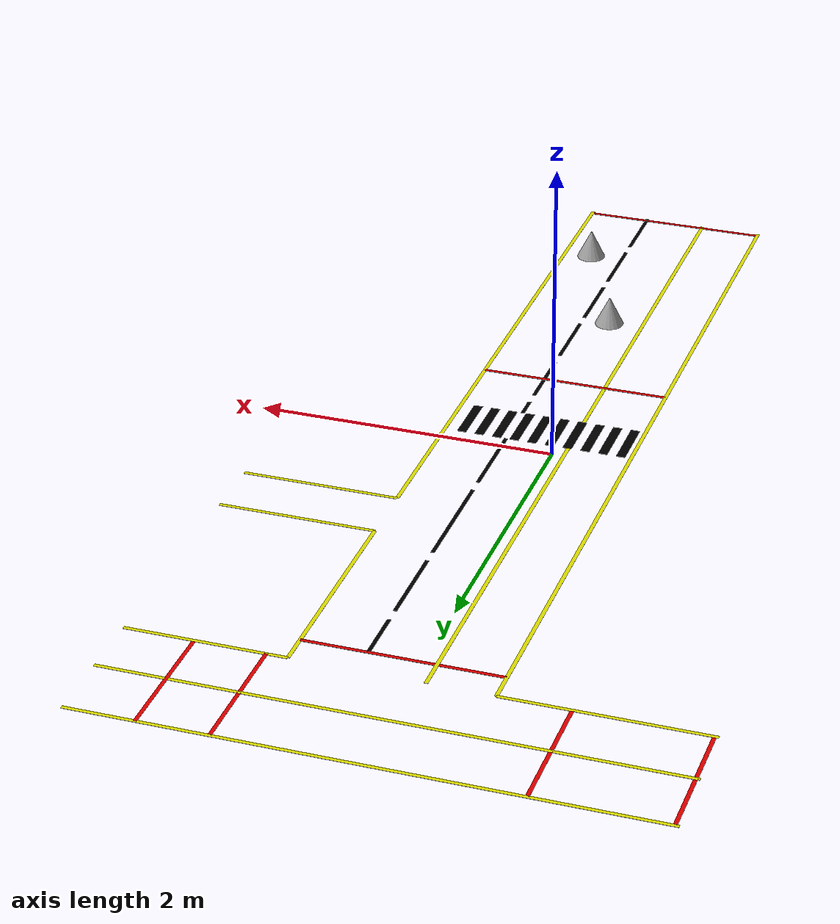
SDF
<?xml version="1.0" ?>
<sdf version="1.8">
  <world name="agv_road_colored_world">
    <physics name="1ms" type="ignored">
      <max_step_size>0.001</max_step_size>
      <real_time_factor>1.0</real_time_factor>
    </physics>
    <plugin filename="gz-sim-physics-system" name="gz::sim::systems::Physics"/>
    <plugin filename="gz-sim-user-commands-system" name="gz::sim::systems::UserCommands"/>
    <plugin filename="gz-sim-scene-broadcaster-system" name="gz::sim::systems::SceneBroadcaster"/>
    <plugin filename="gz-sim-sensors-system" name="gz::sim::systems::Sensors">
      <render_engine>ogre2</render_engine>
    </plugin>
    <light type="directional" name="sun_light">
      <cast_shadows>false</cast_shadows>
      <pose>0 0 10 0 0 0</pose>
      <diffuse>0.8 0.8 0.8 1</diffuse>
      <specular>0.2 0.2 0.2 1</specular>
      <attenuation>
        <range>1000</range>
        <constant>0.9</constant>
        <linear>0.01</linear>
        <quadratic>0.001</quadratic>
      </attenuation>
      <direction>-0.5 0.1 -0.9</direction>
    </light>

    <model name="invisible_ground">
      <static>true</static>
      <link name="link">
        <collision name="collision">
          <geometry>
            <plane>
              <normal>0 0 1</normal>
              <size>20 20</size>
            </plane>
          </geometry>
          <surface>
            <friction>
              <ode>
                <mu>1.0</mu>
                <mu2>1.0</mu2>
              </ode>
            </friction>
          </surface>
        </collision>
      </link>
    </model>

    <model name="road_lines">
      <static>true</static>

      <link name="yellow_h_lines">
        <visual name="y_h1">
          <pose>0 3.6325 0.001 0 0 0</pose>
          <geometry><box><size>3.6 0.025 0.001</size></box></geometry>
          <material><ambient>1 1 0 1</ambient><diffuse>1 1 0 1</diffuse></material>
        </visual>
        <visual name="y_h2">
          <pose>0 3.1825 0.001 0 0 0</pose>
          <geometry><box><size>3.6 0.025 0.001</size></box></geometry>
          <material><ambient>1 1 0 1</ambient><diffuse>1 1 0 1</diffuse></material>
        </visual>
        <visual name="y_h3_left">
          <pose>-1.15 2.7625 0.001 0 0 0</pose>
          <geometry><box><size>1.3 0.025 0.001</size></box></geometry>
          <material><ambient>1 1 0 1</ambient><diffuse>1 1 0 1</diffuse></material>
        </visual>
        <visual name="y_h3_right">
          <pose>1.283 2.7625 0.001 0 0 0</pose>
          <geometry><box><size>1.034 0.025 0.001</size></box></geometry>
          <material><ambient>1 1 0 1</ambient><diffuse>1 1 0 1</diffuse></material>
        </visual>
      </link>

      <link name="yellow_v_lines">
        <visual name="y_v_border_left">
          <pose>-0.5 -0.435 0.001 0 0 0</pose>
          <geometry><box><size>0.025 6.395 0.001</size></box></geometry>
          <material><ambient>1 1 0 1</ambient><diffuse>1 1 0 1</diffuse></material>
        </visual>
        <visual name="y_v_lane1_top">
          <pose>-0.078 1.3275 0.001 0 0 0</pose>
          <geometry><box><size>0.025 2.87 0.001</size></box></geometry>
          <material><ambient>1 1 0 1</ambient><diffuse>1 1 0 1</diffuse></material>
        </visual>
        <visual name="y_v_lane1_bot">
          <pose>-0.078 -2.0525 0.001 0 0 0</pose>
          <geometry><box><size>0.025 3.16 0.001</size></box></geometry>
          <material><ambient>1 1 0 1</ambient><diffuse>1 1 0 1</diffuse></material>
        </visual>
        <visual name="y_v_lane2_top_1">
          <pose>0.344 0.1925 0.001 0 0 0</pose>
          <geometry><box><size>0.025 0.6 0.001</size></box></geometry>
          <material><ambient>0 0 0 1</ambient><diffuse>0 0 0 1</diffuse></material>
        </visual>
        <visual name="y_v_lane2_top_2">
          <pose>0.344 0.9925 0.001 0 0 0</pose>
          <geometry><box><size>0.025 0.8 0.001</size></box></geometry>
          <material><ambient>0 0 0 1</ambient><diffuse>0 0 0 1</diffuse></material>
        </visual>
        <visual name="y_v_lane2_top_3">
          <pose>0.344 1.7925 0.001 0 0 0</pose>
          <geometry><box><size>0.025 0.6 0.001</size></box></geometry>
          <material><ambient>0 0 0 1</ambient><diffuse>0 0 0 1</diffuse></material>
        </visual>
        <visual name="y_v_lane2_top_4">
          <pose>0.344 2.3775 0.001 0 0 0</pose>
          <geometry><box><size>0.025 0.37 0.001</size></box></geometry>
          <material><ambient>0 0 0 1</ambient><diffuse>0 0 0 1</diffuse></material>
        </visual>
        <visual name="y_v_lane2_bot_1">
          <pose>0.344 -3.3825 0.001 0 0 0</pose>
          <geometry><box><size>0.025 0.5 0.001</size></box></geometry>
          <material><ambient>0 0 0 1</ambient><diffuse>0 0 0 1</diffuse></material>
        </visual>
        <visual name="y_v_lane2_bot_2">
          <pose>0.344 -2.7825 0.001 0 0 0</pose>
          <geometry><box><size>0.025 0.5 0.001</size></box></geometry>
          <material><ambient>0 0 0 1</ambient><diffuse>0 0 0 1</diffuse></material>
        </visual>
        <visual name="y_v_lane2_bot_3">
          <pose>0.344 -2.1825 0.001 0 0 0</pose>
          <geometry><box><size>0.025 0.5 0.001</size></box></geometry>
          <material><ambient>0 0 0 1</ambient><diffuse>0 0 0 1</diffuse></material>
        </visual>
        <visual name="y_v_lane2_bot_4">
          <pose>0.344 -1.5825 0.001 0 0 0</pose>
          <geometry><box><size>0.025 0.5 0.001</size></box></geometry>
          <material><ambient>0 0 0 1</ambient><diffuse>0 0 0 1</diffuse></material>
        </visual>
        <visual name="y_v_lane2_bot_5">
          <pose>0.344 -0.9825 0.001 0 0 0</pose>
          <geometry><box><size>0.025 0.5 0.001</size></box></geometry>
          <material><ambient>0 0 0 1</ambient><diffuse>0 0 0 1</diffuse></material>
        </visual>
        <visual name="y_v_lane2_bot_6">
          <pose>0.344 -0.5525 0.001 0 0 0</pose>
          <geometry><box><size>0.025 0.16 0.001</size></box></geometry>
          <material><ambient>0 0 0 1</ambient><diffuse>0 0 0 1</diffuse></material>
        </visual>
        <visual name="y_v_border_right_top">
          <pose>0.766 2.0125 0.001 0 0 0</pose>
          <geometry><box><size>0.025 1.50 0.001</size></box></geometry>
          <material><ambient>1 1 0 1</ambient><diffuse>1 1 0 1</diffuse></material>
        </visual>
        <visual name="y_v_border_right_bot">
          <pose>0.766 -1.396 0.001 0 0 0</pose>
          <geometry><box><size>0.025 4.473 0.001</size></box></geometry>
          <material><ambient>1 1 0 1</ambient><diffuse>1 1 0 1</diffuse></material>
        </visual>
      </link>

      <link name="yellow_branch_lines">
        <visual name="y_branch_top">
          <pose>1.283 1.2625 0.001 0 0 0</pose>
          <geometry><box><size>1.034 0.025 0.001</size></box></geometry>
          <material><ambient>1 1 0 1</ambient><diffuse>1 1 0 1</diffuse></material>
        </visual>
        <visual name="y_branch_bot">
          <pose>1.283 0.8405 0.001 0 0 0</pose>
          <geometry><box><size>1.034 0.025 0.001</size></box></geometry>
          <material><ambient>1 1 0 1</ambient><diffuse>1 1 0 1</diffuse></material>
        </visual>
      </link>

      <link name="red_lines">
        <visual name="r_v1"><pose>-1.775 3.1975 0.001 0 0 0</pose><geometry><box><size>0.025 0.87 0.001</size></box></geometry><material><ambient>1 0 0 1</ambient><diffuse>1 0 0 1</diffuse></material></visual>
        <visual name="r_v2"><pose>-0.95 3.1975 0.001 0 0 0</pose><geometry><box><size>0.025 0.87 0.001</size></box></geometry><material><ambient>1 0 0 1</ambient><diffuse>1 0 0 1</diffuse></material></visual>
        <visual name="r_v3"><pose>0.90 3.1975 0.001 0 0 0</pose><geometry><box><size>0.025 0.87 0.001</size></box></geometry><material><ambient>1 0 0 1</ambient><diffuse>1 0 0 1</diffuse></material></visual>
        <visual name="r_v4"><pose>1.35 3.1975 0.001 0 0 0</pose><geometry><box><size>0.025 0.87 0.001</size></box></geometry><material><ambient>1 0 0 1</ambient><diffuse>1 0 0 1</diffuse></material></visual>
        <visual name="r_h_stop1"><pose>0.133 2.5625 0.001 0 0 0</pose><geometry><box><size>1.266 0.025 0.001</size></box></geometry><material><ambient>1 0 0 1</ambient><diffuse>1 0 0 1</diffuse></material></visual>
        <visual name="r_h_stop2"><pose>0.133 -0.9725 0.001 0 0 0</pose><geometry><box><size>1.266 0.025 0.001</size></box></geometry><material><ambient>1 0 0 1</ambient><diffuse>1 0 0 1</diffuse></material></visual>
        <visual name="r_h_end"><pose>0.133 -3.6075 0.001 0 0 0</pose><geometry><box><size>1.266 0.025 0.001</size></box></geometry><material><ambient>1 0 0 1</ambient><diffuse>1 0 0 1</diffuse></material></visual>
      </link>

      <link name="black_crosswalk">
        <visual name="cw_1"><pose>-0.43 -0.29 0.001 0 0 0</pose><geometry><box><size>0.06 0.365 0.001</size></box></geometry><material><ambient>0 0 0 1</ambient><diffuse>0 0 0 1</diffuse></material></visual>
        <visual name="cw_2"><pose>-0.31 -0.29 0.001 0 0 0</pose><geometry><box><size>0.06 0.365 0.001</size></box></geometry><material><ambient>0 0 0 1</ambient><diffuse>0 0 0 1</diffuse></material></visual>
        <visual name="cw_3"><pose>-0.19 -0.29 0.001 0 0 0</pose><geometry><box><size>0.06 0.365 0.001</size></box></geometry><material><ambient>0 0 0 1</ambient><diffuse>0 0 0 1</diffuse></material></visual>
        <visual name="cw_4"><pose>-0.07 -0.29 0.001 0 0 0</pose><geometry><box><size>0.06 0.365 0.001</size></box></geometry><material><ambient>0 0 0 1</ambient><diffuse>0 0 0 1</diffuse></material></visual>
        <visual name="cw_5"><pose>0.05 -0.29 0.001 0 0 0</pose><geometry><box><size>0.06 0.365 0.001</size></box></geometry><material><ambient>0 0 0 1</ambient><diffuse>0 0 0 1</diffuse></material></visual>
        <visual name="cw_6"><pose>0.17 -0.29 0.001 0 0 0</pose><geometry><box><size>0.06 0.365 0.001</size></box></geometry><material><ambient>0 0 0 1</ambient><diffuse>0 0 0 1</diffuse></material></visual>
        <visual name="cw_7"><pose>0.29 -0.29 0.001 0 0 0</pose><geometry><box><size>0.06 0.365 0.001</size></box></geometry><material><ambient>0 0 0 1</ambient><diffuse>0 0 0 1</diffuse></material></visual>
        <visual name="cw_8"><pose>0.41 -0.29 0.001 0 0 0</pose><geometry><box><size>0.06 0.365 0.001</size></box></geometry><material><ambient>0 0 0 1</ambient><diffuse>0 0 0 1</diffuse></material></visual>
        <visual name="cw_9"><pose>0.53 -0.29 0.001 0 0 0</pose><geometry><box><size>0.06 0.365 0.001</size></box></geometry><material><ambient>0 0 0 1</ambient><diffuse>0 0 0 1</diffuse></material></visual>
        <visual name="cw_10"><pose>0.65 -0.29 0.001 0 0 0</pose><geometry><box><size>0.06 0.365 0.001</size></box></geometry><material><ambient>0 0 0 1</ambient><diffuse>0 0 0 1</diffuse></material></visual>
      </link>
    </model>

    <model name="cone_1">
      <pose>0.6 -3.00 0.05 0 0 0</pose>
      <link name="link">
        <collision name="collision">
          <geometry><cone><radius>0.1</radius><length>0.2</length></cone></geometry>
        </collision>
        <visual name="visual">
          <geometry><cone><radius>0.1</radius><length>0.2</length></cone></geometry>
          <material><script><uri>file://media/materials/scripts/gazebo.material</uri><name>Gazebo/Grey</name></script></material>
        </visual>
      </link>
    </model>

    <model name="cone_2">
      <pose>0.18 -2.00 0.05 0 0 0</pose>
      <link name="link">
        <collision name="collision">
          <geometry><cone><radius>0.1</radius><length>0.2</length></cone></geometry>
        </collision>
        <visual name="visual">
          <geometry><cone><radius>0.1</radius><length>0.2</length></cone></geometry>
          <material><script><uri>file://media/materials/scripts/gazebo.material</uri><name>Gazebo/Grey</name></script></material>
        </visual>
      </link>
    </model>

  </world>
</sdf>
